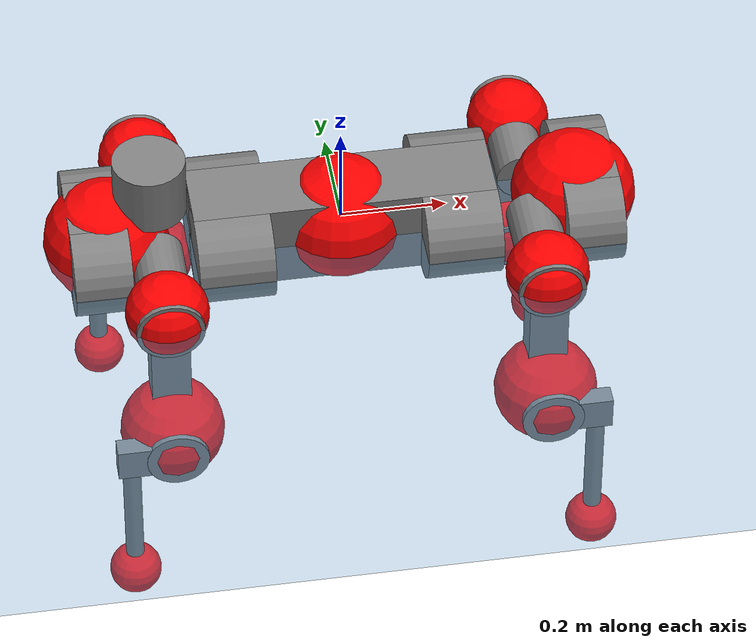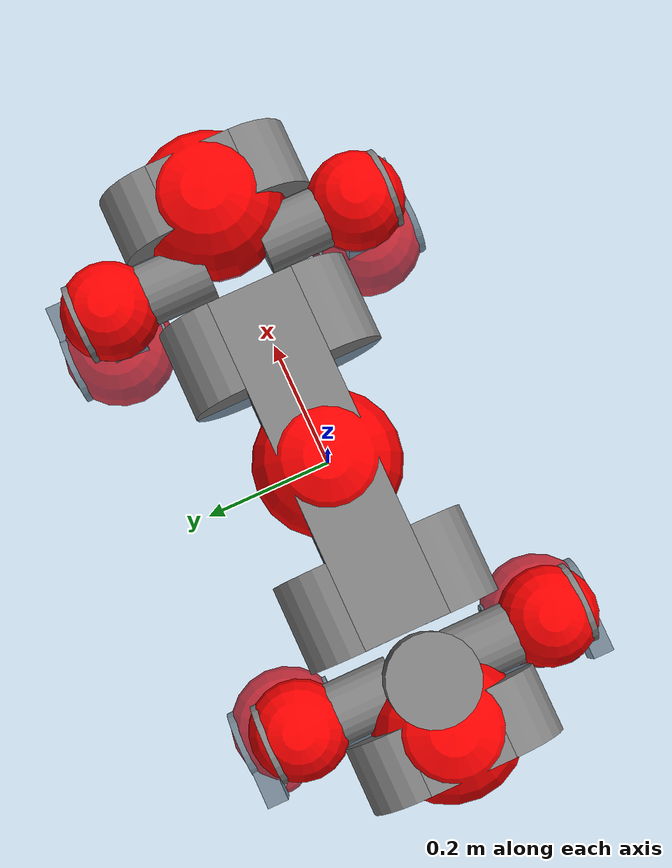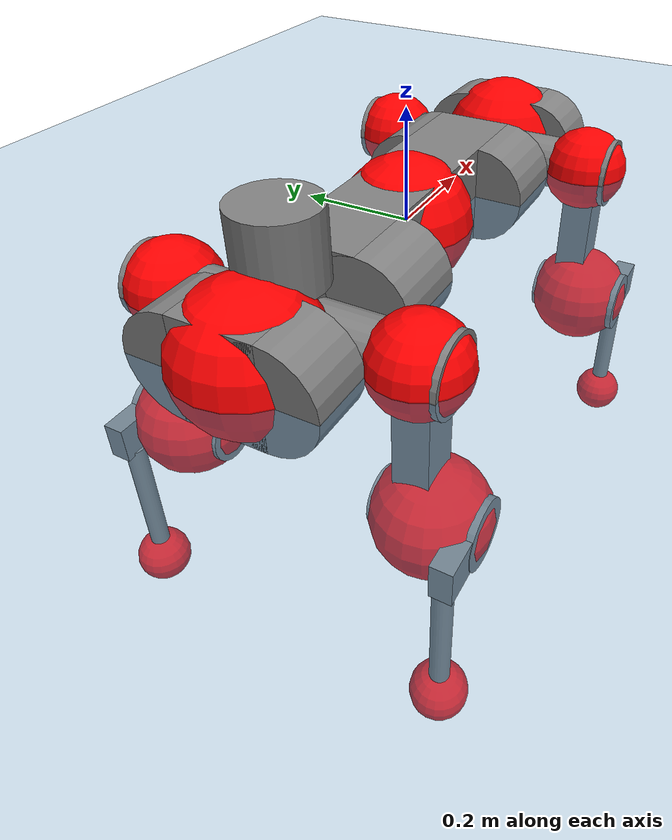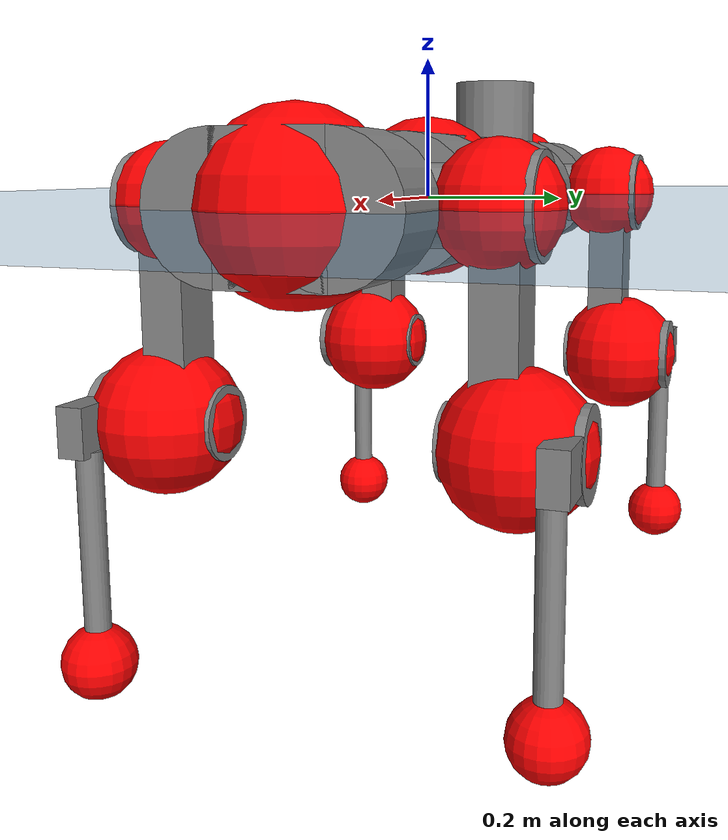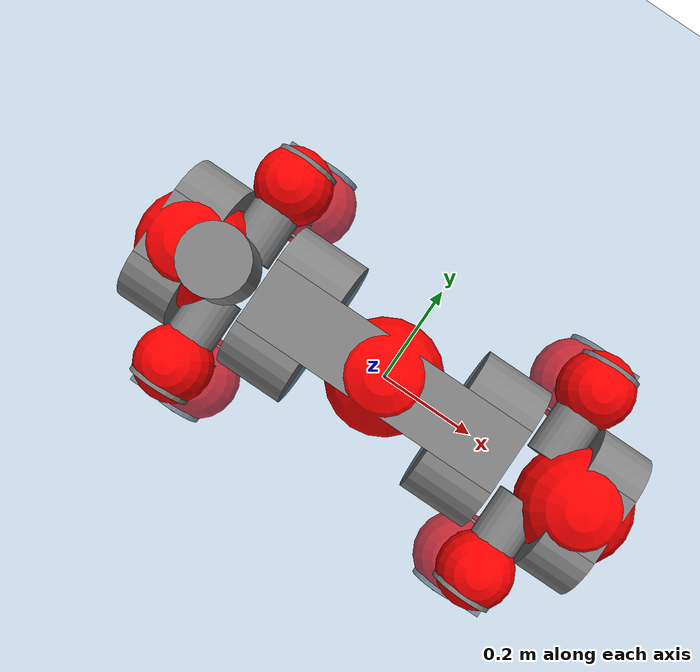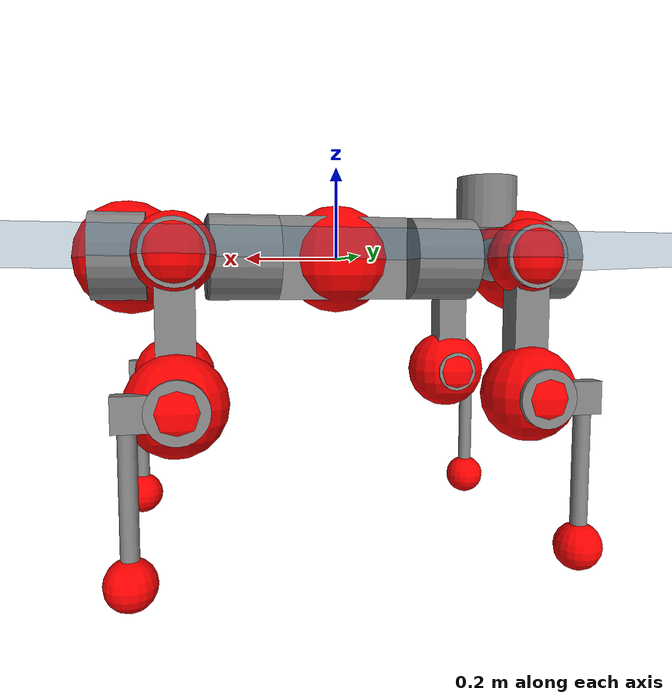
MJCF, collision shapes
<mujoco model="anymal_c">
  <compiler angle="radian" assetdir="assets" balanceinertia="true" inertiafromgeom="false"/>

  <option timestep="0.005" density="1.2" viscosity="2e-05"/>

  <size nkey="1"/>

  <visual>
    <quality shadowsize="8192"/>
    <map shadowclip="0.5"/>
  </visual>

  <default>
    <default class="/">
      <material specular="0" shininess="0.25"/>
      <geom contype="0" conaffinity="0" group="1" solref="-1000 -80"/>
      <site size="0.01 0.005 0.005" group="5"/>
      <general forcelimited="true" forcerange="-80 80" biastype="affine" gainprm="80" biasprm="0 -80 -2"/>
      <default class="anymal_c">
        <joint armature="0.01" damping="0.01" frictionloss="0.1"/>
        <default class="visual">
          <geom type="mesh" group="2"/>
          <default class="visual_zflip"/>
        </default>
        <default class="collision">
          <geom type="cylinder" group="3"/>
          <default class="foot">
            <geom size="0.03 0 0" type="sphere" condim="6" priority="1" friction="0.8 0.02 0.01" solimp="0.015 1 0.03"/>
          </default>
        </default>
      </default>
      <default class="reward_collision_sphere">
        <geom group="5" rgba="1 0 0 1"/>
      </default>
    </default>
  </default>

  <asset>
    <texture type="skybox" colorspace="auto" name="//unnamed_texture_0" builtin="gradient" rgb1="0.95 0.95 0.95" rgb2="0.95 0.95 0.95" width="100" height="600"/>
    <texture type="2d" colorspace="auto" name="texplane" builtin="checker" rgb1="0.345 0.575 0.748" rgb2="0.345 0.575 0.748" markrgb="1 1 1" width="512" height="512"/>
    <texture type="2d" colorspace="linear" name="base" file="base.png"/>
    <texture type="2d" colorspace="linear" name="top_shell" file="top_shell.png"/>
    <texture type="2d" colorspace="linear" name="bottom_shell" file="bottom_shell.png"/>
    <texture type="2d" colorspace="linear" name="remote" file="remote.png"/>
    <texture type="2d" colorspace="linear" name="hatch" file="hatch.png"/>
    <texture type="2d" colorspace="linear" name="handle" file="handle.png"/>
    <texture type="2d" colorspace="linear" name="face" file="face.png"/>
    <texture type="2d" colorspace="linear" name="battery" file="battery.png"/>
    <texture type="2d" colorspace="linear" name="lidar_cage" file="lidar_cage.png"/>
    <texture type="2d" colorspace="linear" name="depth_camera" file="depth_camera.png"/>
    <texture type="2d" colorspace="linear" name="wide_angle_camera" file="wide_angle_camera.png"/>
    <texture type="2d" colorspace="linear" name="lidar" file="lidar.png"/>
    <texture type="2d" colorspace="linear" name="drive" file="drive.png"/>
    <texture type="2d" colorspace="linear" name="hip_l" file="hip_l.png"/>
    <texture type="2d" colorspace="linear" name="shank_l" file="shank_l.png"/>
    <texture type="2d" colorspace="linear" name="foot" file="foot.png"/>
    <texture type="2d" colorspace="linear" name="thigh" file="thigh.png"/>
    <texture type="2d" colorspace="linear" name="shank_r" file="shank_r.png"/>
    <texture type="2d" colorspace="linear" name="hip_r" file="hip_r.png"/>
    <material name="MatPlane" class="/" texture="texplane" texuniform="true" texrepeat="2 2" specular="0.9" shininess="0.5"/>
    <material name="black_plastic" class="/" rgba="0.007 0.007 0.007 1"/>
    <material name="green" class="/" rgba="0.052 0.178 0.033 1"/>
    <material name="red" class="/" rgba="0.178 0.006 0.005 1"/>
    <material name="yellow" class="/" rgba="0.178 0.119 0.006 1"/>
    <material name="lwl" class="/" rgba="0.8 0.8 0.8 1"/>
    <material name="base" class="/" texture="base"/>
    <material name="top_shell" class="/" texture="top_shell"/>
    <material name="bottom_shell" class="/" texture="bottom_shell"/>
    <material name="hip_l" class="/" texture="hip_l"/>
    <material name="thigh" class="/" texture="thigh"/>
    <material name="shank_l" class="/" texture="shank_l"/>
    <material name="foot" class="/" texture="foot"/>
    <material name="hip_r" class="/" texture="hip_r"/>
    <material name="shank" class="/" texture="shank_r"/>
    <material name="hatch" class="/" texture="hatch"/>
    <material name="remote" class="/" texture="remote"/>
    <material name="handle" class="/" texture="handle"/>
    <material name="face" class="/" texture="face"/>
    <material name="depth_camera" class="/" texture="depth_camera"/>
    <material name="wide_angle_camera" class="/" texture="wide_angle_camera"/>
    <material name="battery" class="/" texture="battery"/>
    <material name="lidar_cage" class="/" texture="lidar_cage"/>
    <material name="lidar" class="/" texture="lidar"/>
    <material name="drive" class="/" texture="drive"/>
    <mesh name="base_0" class="/" file="base_0.obj"/>
    <mesh name="base_1" class="/" file="base_1.obj"/>
    <mesh name="base_2" class="/" file="base_2.obj"/>
    <mesh name="base_3" class="/" file="base_3.obj"/>
    <mesh name="base_4" class="/" file="base_4.obj"/>
    <mesh name="base_5" class="/" file="base_5.obj"/>
    <mesh name="top_shell" class="/" file="top_shell.obj"/>
    <mesh name="bottom_shell" class="/" file="bottom_shell.obj"/>
    <mesh name="remote" class="/" file="remote.obj"/>
    <mesh name="handle" class="/" file="handle.obj"/>
    <mesh name="face" class="/" file="face.obj"/>
    <mesh name="wide_angle_camera" class="/" file="wide_angle_camera.obj"/>
    <mesh name="depth_camera" class="/" file="depth_camera.obj"/>
    <mesh name="battery" class="/" file="battery.obj"/>
    <mesh name="lidar_cage" class="/" file="lidar_cage.obj"/>
    <mesh name="lidar" class="/" file="lidar.obj"/>
    <mesh name="drive" class="/" file="drive.obj"/>
    <mesh name="hip_l" class="/" file="hip_l.obj"/>
    <mesh name="thigh" class="/" file="thigh.obj"/>
    <mesh name="shank_l" class="/" file="shank_l.obj"/>
    <mesh name="foot" class="/" file="foot.obj"/>
    <mesh name="hip_r" class="/" file="hip_r.obj"/>
    <mesh name="hatch" class="/" file="hatch.obj"/>
    <mesh name="shank_r" class="/" file="shank_r.obj"/>
  </asset>

  <worldbody>
    <geom name="floor" class="/" size="100 100 0.125" type="plane" group="0" material="MatPlane"/>
    <light name="toplight_shadow" class="/" pos="0 0 5" dir="0.0990148 0.0990148 -0.990148" type="directional" ambient="0.04 0.04 0.04" diffuse="0.55 0.55 0.55" specular="0.12 0.12 0.12"/>
    <light name="toplight_fill" class="/" pos="0 0 5" dir="0.0990148 0.0990148 -0.990148" type="directional" castshadow="false" ambient="0.04 0.04 0.04" diffuse="0.3 0.3 0.3" specular="0.08 0.08 0.08"/>
    <body name="trunk" childclass="anymal_c" pos="4.75923e-05 0.000129486 0.000635206" quat="1 7.84184e-05 -9.32496e-05 5.11256e-05">
      <inertial pos="0.00246911 -0.000537775 0.0479485" quat="0.49996 0.50036 0.499818 0.499862" mass="17.5377" diaginertia="0.579994 0.561057 0.192825"/>
      <joint name="//unnamed_joint_0" type="free" armature="0" damping="0" frictionloss="0"/>
      <geom name="//unnamed_geom_1" class="visual" material="green" mesh="base_0"/>
      <geom name="//unnamed_geom_2" class="visual" material="yellow" mesh="base_1"/>
      <geom name="//unnamed_geom_3" class="visual" material="red" mesh="base_2"/>
      <geom name="//unnamed_geom_4" class="visual" material="black_plastic" mesh="base_3"/>
      <geom name="//unnamed_geom_5" class="visual" material="lwl" mesh="base_4"/>
      <geom name="//unnamed_geom_6" class="visual" material="base" mesh="base_5"/>
      <geom name="trunk_1" class="collision" size="0.28476 0.0687351 0.0883737" type="box"/>
      <geom name="trunk_2" class="collision" size="0.0883737 0.0711899" pos="0.214015 0.0687023 0" quat="0.707107 0 0.707107 0"/>
      <geom name="trunk_3" class="collision" size="0.0883737 0.0711899" pos="-0.214015 0.0687023 0" quat="0.707107 0 0.707107 0"/>
      <geom name="trunk_4" class="collision" size="0.0883737 0.0711899" pos="0.214015 -0.0687023 0" quat="0.707107 0 0.707107 0"/>
      <geom name="trunk_5" class="collision" size="0.0883737 0.0711899" pos="-0.214015 -0.0687023 0" quat="0.707107 0 0.707107 0"/>
      <geom name="//unnamed_geom_12" class="visual" material="top_shell" mesh="top_shell"/>
      <geom name="//unnamed_geom_13" class="visual" material="bottom_shell" mesh="bottom_shell"/>
      <geom name="//unnamed_geom_14" class="visual" material="remote" mesh="remote"/>
      <geom name="//unnamed_geom_15" class="visual" material="handle" mesh="handle"/>
      <geom name="//unnamed_geom_16" class="visual" pos="0.407858 0 0" quat="1 0 0 0" material="face" mesh="face"/>
      <geom name="trunk_6" class="collision" size="0.0540061 0.0687351 0.0883737" pos="0.461977 0 0" type="box"/>
      <geom name="//unnamed_geom_18" class="collision" size="0.0883737 0.0540061" pos="0.461977 0.0687023 0" quat="0.707107 0 0.707107 0"/>
      <geom name="//unnamed_geom_19" class="collision" size="0.0883737 0.0540061" pos="0.461977 -0.0687023 0" quat="0.707107 0 0.707107 0"/>
      <geom name="//unnamed_geom_20" class="visual" pos="0.454252 0 -0.0285987" quat="0.965926 0 0.258819 0" material="depth_camera" mesh="depth_camera"/>
      <geom name="//unnamed_geom_21" class="visual" pos="0.50478 0 0.0146759" material="wide_angle_camera" mesh="wide_angle_camera"/>
      <geom name="//unnamed_geom_22" class="visual_zflip" pos="-0.407858 0 0" quat="0 0 0 1" material="face" mesh="face"/>
      <geom name="trunk_7" class="collision" size="0.0540061 0.0687351 0.0883737" pos="-0.461977 0 0" quat="0 0 0 1" type="box"/>
      <geom name="//unnamed_geom_24" class="collision" size="0.0883737 0.0540061" pos="-0.461977 -0.0687023 0" quat="0 -0.707107 0 0.707107"/>
      <geom name="//unnamed_geom_25" class="collision" size="0.0883737 0.0540061" pos="-0.461977 0.0687023 0" quat="0 -0.707107 0 0.707107"/>
      <geom name="//unnamed_geom_26" class="visual" pos="-0.454252 0 -0.0285987" quat="0 -0.258819 0 0.965926" material="depth_camera" mesh="depth_camera"/>
      <geom name="//unnamed_geom_27" class="visual_zflip" pos="-0.50478 0 0.0146759" quat="0 0 0 1" material="wide_angle_camera" mesh="wide_angle_camera"/>
      <geom name="//unnamed_geom_28" class="visual" material="battery" mesh="battery"/>
      <geom name="//unnamed_geom_29" class="visual" pos="0 0.0750094 0.0285068" quat="0.683013 -0.183013 0.183013 0.683013" material="depth_camera" mesh="depth_camera"/>
      <geom name="//unnamed_geom_30" class="visual" pos="0 -0.0750094 0.0285068" quat="0.683013 0.183013 0.183013 -0.683013" material="depth_camera" mesh="depth_camera"/>
      <geom name="//unnamed_geom_31" class="visual" pos="-0.358167 0 0.0720559" quat="1 0 0 0" material="lidar_cage" mesh="lidar_cage"/>
      <geom name="trunk_8" class="collision" size="0.0687351 0.0589158" pos="-0.358167 0 0.130877"/>
      <geom name="//unnamed_geom_33" class="visual" pos="-0.358167 -9.88075e-07 0.139406" quat="0.707107 0 0 -0.707107" material="lidar" mesh="lidar"/>
      <geom name="//unnamed_geom_34" class="visual" pos="0.295094 0.102072 1.91285e-11" quat="0.258819 0.965926 0 0" material="drive" mesh="drive"/>
      <geom name="//unnamed_geom_35" class="visual" pos="0.295094 -0.102072 -1.91285e-11" quat="0.258819 -0.965926 0 0" material="drive" mesh="drive"/>
      <geom name="//unnamed_geom_36" class="visual" pos="-0.295094 0.102072 -1.91285e-11" quat="0 0 0.965926 -0.258819" material="drive" mesh="drive"/>
      <geom name="//unnamed_geom_37" class="visual" pos="-0.295094 -0.102072 1.91285e-11" quat="0 0 -0.965926 -0.258819" material="drive" mesh="drive"/>
      <geom name="//unnamed_geom_38" class="visual" pos="0.114141 0 0.0715657" quat="1 0 0 0" material="hatch" mesh="hatch"/>
      <geom name="//unnamed_geom_39" class="reward_collision_sphere" size="0.117832"/>
      <geom name="//unnamed_geom_40" class="reward_collision_sphere" size="0.117832" pos="0.442789 0 0"/>
      <geom name="//unnamed_geom_41" class="reward_collision_sphere" size="0.117832" pos="-0.442789 0 0"/>
      <site name="imu" pos="0.238673 0.00595077 0.0472153" size="0.0098193"/>
      <camera name="track" pos="0 -1.96292 0" quat="0.707107 0.707107 0 0" mode="trackcom"/>
      <camera name="ego_camera" pos="0.442789 0 -0.0392141" quat="-0.5 -0.5 0.5 0.5"/>
      <body name="LF_HIP" pos="0.295899 0.101935 0.000201455" quat="0.258491 0.966014 8.15022e-05 0.000442807">
        <inertial pos="0.0562935 -0.0138174 -0.00790566" quat="-0.124323 0.708331 -0.135168 0.681572" mass="2.62324" diaginertia="0.00537352 0.00448883 0.0029816"/>
        <joint name="LF_HAA" pos="0 0 0" axis="1 0.000646287 0.000160498" range="-0.716296 0.471216" armature="0.0102774" damping="0.00344049" frictionloss="0.0957069"/>
        <geom name="//unnamed_geom_42" class="visual" pos="0 1.12525e-06 -1.84821e-07" quat="0.258819 -0.965926 0 0" material="hip_l" mesh="hip_l"/>
        <geom name="//unnamed_geom_43" class="visual" pos="0.0589402 -0.0713851 -0.041206" quat="0.183013 -0.683013 0.683013 0.183013" material="drive" mesh="drive"/>
        <geom name="//unnamed_geom_44" class="collision" size="0.0490965 0.0687351" pos="0.0589402 -0.0117381 -0.00676933" quat="-0.353553 -0.612372 0.612372 -0.353553"/>
        <body name="LF_THIGH" pos="0.0591259 -0.0716637 -0.041829" quat="0.183092 -0.683064 0.682924 0.183075">
          <inertial pos="0.0296235 -1.13933e-05 -0.24025" quat="0.993142 -0.00514086 -0.0807808 0.0843617" mass="2.86607" diaginertia="0.0276023 0.0271564 0.00375314"/>
          <joint name="LF_HFE" pos="0 0 0" axis="0.999991 0.0016555 -0.00396658" range="-3.14368 3.14848" armature="0.0100582" damping="0.0103525" frictionloss="0.0964593"/>
          <geom name="//unnamed_geom_45" class="visual" pos="5.00386e-05 7.8849e-08 0" quat="0.707107 0 0 -0.707107" material="thigh" mesh="thigh"/>
          <geom name="//unnamed_geom_46" class="collision" size="0.0638254 0.0392772" pos="0.039359 0 0" quat="0.5 0.5 -0.5 -0.5"/>
          <geom name="//unnamed_geom_47" class="collision" size="0.0368224 0.0294579 0.13876" pos="0.0295193 0 -0.138538" quat="0.707107 0 0 -0.707107" type="box"/>
          <geom name="//unnamed_geom_48" class="visual" pos="0.0986928 0 -0.2794" quat="1 0 0 0" material="drive" mesh="drive"/>
          <geom name="//unnamed_geom_49" class="collision" size="0.0490965 0.0687351" pos="0.0298145 0 -0.2794" quat="0.707107 0 0.707107 0"/>
          <geom name="//unnamed_geom_50" class="reward_collision_sphere" size="0.0785544" pos="0.0245994 0 0"/>
          <body name="LF_SHANK" pos="0.0983062 -0.000188901 -0.280468" quat="1 -3.78528e-06 -7.54085e-07 1.38385e-06">
            <inertial pos="0.00497359 -0.0601594 -0.0794036" quat="0.992839 -0.116671 -0.000935813 -0.0256418" mass="0.56591" diaginertia="0.00949312 0.00841609 0.0010205"/>
            <joint name="LF_KFE" pos="0 0 0" axis="1 0.000449355 -6.41633e-05" stiffness="2.49318e-05" range="-3.1264 3.12894" armature="0.00931888" damping="0.006042" frictionloss="0.0941091"/>
            <geom name="//unnamed_geom_51" class="visual" pos="1.63165e-05 8.70003e-05 0" quat="0.707107 0 0 -0.707107" material="shank_l" mesh="shank_l"/>
            <geom name="LF_kfe_act" class="collision" size="0.0589158 0.0196386" pos="0.0196795 0 0" quat="0.5 0.5 -0.5 -0.5"/>
            <geom name="//unnamed_geom_53" class="collision" size="0.05646 0.0331401 0.0186567" pos="0.0196795 -0.056433 0" quat="0.5 0.5 -0.5 -0.5" type="box"/>
            <geom name="//unnamed_geom_54" class="visual" pos="0.0128409 -0.0862915 -0.33133" quat="0.382683 0 0 -0.92388" material="foot" mesh="foot"/>
            <geom name="LF_calf" class="collision" size="0.0171838 0.1387" pos="0.0128409 -0.0863195 -0.165665" quat="0.707107 0 0 -0.707107"/>
            <geom name="LF_foot" class="foot" size="0.0320389" pos="0.0128409 -0.0863195 -0.309272" quat="0.707107 0 0 -0.707107"/>
            <geom name="//unnamed_geom_57" class="reward_collision_sphere" size="0.098193" pos="-0.0491988 0 0"/>
            <geom name="//unnamed_geom_58" class="reward_collision_sphere" size="0.0490965" pos="0.0128409 -0.0863195 -0.309272"/>
            <site name="LF_foot" class="foot" pos="0.0128409 -0.0863195 -0.309272" quat="0.707107 0 0 -0.707107" size="0.0098193"/>
          </body>
        </body>
      </body>
      <body name="RF_HIP" pos="0.296439 -0.102677 0.000809865" quat="0.258767 -0.96594 -2.40259e-05 7.35817e-05">
        <inertial pos="0.0562028 0.0151446 -0.00820181" quat="0.134845 0.679078 0.128348 0.710068" mass="2.59787" diaginertia="0.00540086 0.00438077 0.00295182"/>
        <joint name="RF_HAA" pos="0 0 0" axis="1 0.000505297 -0.000772563" stiffness="0.0010739" range="-0.505286 0.730993" armature="0.00970026" damping="0.00931916" frictionloss="0.0960848"/>
        <geom name="//unnamed_geom_59" class="visual" pos="0 -1.12524e-06 -1.8482e-07" quat="0.258819 0.965926 0 0" material="hip_r" mesh="hip_r"/>
        <geom name="//unnamed_geom_60" class="visual" pos="0.0589402 0.0713851 -0.041206" quat="0.183013 0.683013 0.683013 -0.183013" material="drive" mesh="drive"/>
        <geom name="//unnamed_geom_61" class="collision" size="0.0490965 0.0687351" pos="0.0589402 0.0117381 -0.00676933" quat="-0.353553 0.612372 0.612372 0.353553"/>
        <body name="RF_THIGH" pos="0.0599605 0.0721086 -0.0407835" quat="0.183024 0.682955 0.683036 -0.18313">
          <inertial pos="0.0302752 0.00046034 -0.240837" quat="0.992752 -0.00473374 -0.0800169 0.0895448" mass="2.88774" diaginertia="0.0280435 0.0270441 0.00376166"/>
          <joint name="RF_HFE" pos="0 0 0" axis="1 -0.000444585 -0.000328432" stiffness="0.00576673" range="-3.11853 3.1243" armature="0.00983434" damping="0.00847902" frictionloss="0.105863"/>
          <geom name="//unnamed_geom_62" class="visual" pos="5.00386e-05 7.8849e-08 0" quat="0.707107 0 0 -0.707107" material="thigh" mesh="thigh"/>
          <geom name="//unnamed_geom_63" class="collision" size="0.0638254 0.0392772" pos="0.039359 0 0" quat="0.5 0.5 0.5 0.5"/>
          <geom name="//unnamed_geom_64" class="collision" size="0.0368224 0.0294579 0.13876" pos="0.0295193 0 -0.138538" quat="0.707107 0 0 0.707107" type="box"/>
          <geom name="//unnamed_geom_65" class="visual" pos="0.0986928 0 -0.2794" quat="1 0 0 0" material="drive" mesh="drive"/>
          <geom name="//unnamed_geom_66" class="collision" size="0.0490965 0.0687351" pos="0.0298145 0 -0.2794" quat="0.707107 0 0.707107 0"/>
          <geom name="//unnamed_geom_67" class="reward_collision_sphere" size="0.0785544" pos="0.0245994 0 0"/>
          <body name="RF_SHANK" pos="0.0990257 -0.000627259 -0.280049" quat="1 4.19132e-05 2.22548e-05 5.08631e-05">
            <inertial pos="0.00535395 0.0604376 -0.0781116" quat="0.993138 0.1137 -0.00481604 0.0269439" mass="0.553284" diaginertia="0.00923859 0.00842269 0.00100938"/>
            <joint name="RF_KFE" pos="0 0 0" axis="1 0.000828004 0.000239195" range="-3.11686 3.11984" armature="0.00994373" damping="0.0112678" frictionloss="0.0932779"/>
            <geom name="//unnamed_geom_68" class="visual" pos="1.63164e-05 -8.70001e-05 0" quat="0.707107 0 0 0.707107" material="shank" mesh="shank_r"/>
            <geom name="RF_kfe_act" class="collision" size="0.0589158 0.0196386" pos="0.0196795 0 0" quat="0.5 0.5 0.5 0.5"/>
            <geom name="//unnamed_geom_70" class="collision" size="0.05646 0.0331401 0.0186567" pos="0.0196795 0.056433 0" quat="0.5 0.5 0.5 0.5" type="box"/>
            <geom name="//unnamed_geom_71" class="visual" pos="0.0128409 0.0862915 -0.33133" quat="0.382683 0 0 0.92388" material="foot" mesh="foot"/>
            <geom name="RF_calf" class="collision" size="0.0171838 0.1387" pos="0.0128409 0.0863195 -0.165665" quat="0.707107 0 0 0.707107"/>
            <geom name="RF_foot" class="foot" size="0.0279314" pos="0.0128409 0.0863195 -0.309272" quat="0.707107 0 0 0.707107"/>
            <geom name="//unnamed_geom_74" class="reward_collision_sphere" size="0.098193" pos="-0.0491988 0 0"/>
            <geom name="//unnamed_geom_75" class="reward_collision_sphere" size="0.0490965" pos="0.0128409 0.0863195 -0.309272"/>
            <site name="RF_foot" class="foot" pos="0.0128409 0.0863195 -0.309272" quat="0.707107 0 0 0.707107" size="0.0098193"/>
          </body>
        </body>
      </body>
      <body name="LH_HIP" pos="-0.295431 0.10195 -0.000266591" quat="-1.40541e-05 7.95893e-06 0.965894 -0.258937">
        <inertial pos="0.0550437 0.0153617 -0.0084788" quat="0.137575 0.680144 0.130917 0.708053" mass="2.61358" diaginertia="0.0054205 0.00453038 0.00296002"/>
        <joint name="LH_HAA" pos="0 0 0" axis="0.999999 0.000695833 0.000926155" range="-0.503146 0.692132" armature="0.0095491" damping="0.0133506" frictionloss="0.0998075"/>
        <geom name="//unnamed_geom_76" class="visual" pos="0 -1.12524e-06 -1.8482e-07" quat="-0.258819 -0.965926 0 0" material="hip_r" mesh="hip_r"/>
        <geom name="//unnamed_geom_77" class="visual" pos="0.0589402 0.0713851 -0.041206" quat="0.183013 0.683013 0.683013 -0.183013" material="drive" mesh="drive"/>
        <geom name="//unnamed_geom_78" class="collision" size="0.0490965 0.0687351" pos="0.0589402 0.0117381 -0.00676933" quat="-0.353553 0.612372 0.612372 0.353553"/>
        <body name="LH_THIGH" pos="0.05895 0.070338 -0.0409811" quat="0.183079 0.682959 0.683008 -0.183166">
          <inertial pos="0.030423 -0.000212438 -0.241205" quat="0.992765 -0.00523826 -0.0808541 0.088613" mass="2.91253" diaginertia="0.0278892 0.0275497 0.00378689"/>
          <joint name="LH_HFE" pos="0 0 0" axis="0.999996 -0.00183016 -0.00193625" range="-3.14059 3.13484" armature="0.0102725" damping="0.0131864" frictionloss="0.0960437"/>
          <geom name="//unnamed_geom_79" class="visual" pos="5.00386e-05 7.8849e-08 0" quat="0.707107 0 0 -0.707107" material="thigh" mesh="thigh"/>
          <geom name="//unnamed_geom_80" class="collision" size="0.0638254 0.0392772" pos="0.039359 0 0" quat="0.5 0.5 -0.5 -0.5"/>
          <geom name="//unnamed_geom_81" class="collision" size="0.0368224 0.0294579 0.13876" pos="0.0295193 0 -0.138538" quat="0.707107 0 0 -0.707107" type="box"/>
          <geom name="//unnamed_geom_82" class="visual" pos="0.0986928 0 -0.2794" quat="1 0 0 0" material="drive" mesh="drive"/>
          <geom name="//unnamed_geom_83" class="collision" size="0.0490965 0.0687351" pos="0.0298145 0 -0.2794" quat="0.707107 0 0.707107 0"/>
          <geom name="//unnamed_geom_84" class="reward_collision_sphere" size="0.0785544" pos="0.0245994 0 0"/>
          <body name="LH_SHANK" pos="0.100011 -0.000794853 -0.279316" quat="1 0.000205197 -7.3564e-05 -0.000138441">
            <inertial pos="0.00538874 0.0601277 -0.079112" quat="0.992039 0.122559 -0.000817409 0.0289507" mass="0.558171" diaginertia="0.00936828 0.00846511 0.000999376"/>
            <joint name="LH_KFE" pos="0 0 0" axis="1 -6.01002e-05 0.000336081" range="-3.15025 3.14117" armature="0.00997369" damping="0.00951475" frictionloss="0.0944084"/>
            <geom name="//unnamed_geom_85" class="visual" pos="1.63164e-05 -8.70001e-05 0" quat="-0.707107 0 0 -0.707107" material="shank" mesh="shank_r"/>
            <geom name="LH_kfe_act" class="collision" size="0.0589158 0.0196386" pos="0.0196795 0 0" quat="0.5 0.5 -0.5 -0.5"/>
            <geom name="//unnamed_geom_87" class="collision" size="0.05646 0.0331401 0.0186567" pos="0.0196795 0.056433 0" quat="0.5 0.5 -0.5 -0.5" type="box"/>
            <geom name="//unnamed_geom_88" class="visual" pos="0.0128409 0.0862915 -0.33133" quat="-0.382683 0 0 -0.92388" material="foot" mesh="foot"/>
            <geom name="LH_calf" class="collision" size="0.0171838 0.1387" pos="0.0128409 0.0863195 -0.165665" quat="0.707107 0 0 -0.707107"/>
            <geom name="LH_foot" class="foot" size="0.0318842" pos="0.0128409 0.0863195 -0.309272" quat="0.707107 0 0 -0.707107"/>
            <geom name="//unnamed_geom_91" class="reward_collision_sphere" size="0.098193" pos="-0.0491988 0 0"/>
            <geom name="//unnamed_geom_92" class="reward_collision_sphere" size="0.0490965" pos="0.0128409 0.0863195 -0.309272"/>
            <site name="LH_foot" class="foot" pos="0.0128409 0.0863195 -0.309272" quat="0.707107 0 0 -0.707107" size="0.0098193"/>
          </body>
        </body>
      </body>
      <body name="RH_HIP" pos="-0.295179 -0.102864 0.000573941" quat="-3.54707e-05 4.48945e-05 -0.965896 -0.258931">
        <inertial pos="0.0550621 -0.0152146 -0.00812296" quat="-0.128085 0.709626 -0.135142 0.67953" mass="2.66362" diaginertia="0.0054781 0.00453441 0.00297609"/>
        <joint name="RH_HAA" pos="0 0 0" axis="0.999999 -0.000869735 -0.0010023" stiffness="0.00244059" range="-0.726166 0.516054" armature="0.00975288" damping="0.0128073" frictionloss="0.0981498"/>
        <geom name="//unnamed_geom_93" class="visual" pos="0 1.12525e-06 -1.84821e-07" quat="-0.258819 0.965926 0 0" material="hip_l" mesh="hip_l"/>
        <geom name="//unnamed_geom_94" class="visual" pos="0.0589402 -0.0713851 -0.041206" quat="-0.183013 0.683013 -0.683013 -0.183013" material="drive" mesh="drive"/>
        <geom name="//unnamed_geom_95" class="collision" size="0.0490965 0.0687351" pos="0.0589402 -0.0117381 -0.00676933" quat="0.353553 0.612372 -0.612372 0.353553"/>
        <body name="RH_THIGH" pos="0.0587419 -0.0703907 -0.0404115" quat="-0.183025 0.682954 -0.683108 -0.18286">
          <inertial pos="0.0299472 -0.000299566 -0.240153" quat="0.993164 -0.00516512 -0.0806777 0.0841955" mass="2.81697" diaginertia="0.0273483 0.0266381 0.00373981"/>
          <joint name="RH_HFE" pos="0 0 0" axis="0.999999 -0.00098704 -0.000465026" range="-3.1445 3.14445" armature="0.0101569" damping="0.0104868" frictionloss="0.098681"/>
          <geom name="//unnamed_geom_96" class="visual" pos="5.00386e-05 7.8849e-08 0" quat="0.707107 0 0 -0.707107" material="thigh" mesh="thigh"/>
          <geom name="//unnamed_geom_97" class="collision" size="0.0638254 0.0392772" pos="0.039359 0 0" quat="0.5 0.5 0.5 0.5"/>
          <geom name="//unnamed_geom_98" class="collision" size="0.0368224 0.0294579 0.13876" pos="0.0295193 0 -0.138538" quat="0.707107 0 0 0.707107" type="box"/>
          <geom name="//unnamed_geom_99" class="visual" pos="0.0986928 0 -0.2794" quat="1 0 0 0" material="drive" mesh="drive"/>
          <geom name="//unnamed_geom_100" class="collision" size="0.0490965 0.0687351" pos="0.0298145 0 -0.2794" quat="0.707107 0 0.707107 0"/>
          <geom name="//unnamed_geom_101" class="reward_collision_sphere" size="0.0785544" pos="0.0245994 0 0"/>
          <body name="RH_SHANK" pos="0.0977186 -0.000344149 -0.279978" quat="1 0.000357599 -0.000104337 -0.000344337">
            <inertial pos="0.00604834 -0.0599382 -0.0793688" quat="0.992916 -0.116004 -0.00068192 -0.0256821" mass="0.558717" diaginertia="0.0094758 0.00840425 0.00100857"/>
            <joint name="RH_KFE" pos="0 0 0" axis="0.999966 -0.00398856 -0.00715529" range="-3.13687 3.14054" armature="0.00931467" damping="0.00676327" frictionloss="0.0980952"/>
            <geom name="//unnamed_geom_102" class="visual" pos="1.63165e-05 8.70003e-05 0" quat="0.707107 0 0 -0.707107" material="shank_l" mesh="shank_l"/>
            <geom name="RH_kfe_act" class="collision" size="0.0589158 0.0196386" pos="0.0196795 0 0" quat="0.5 0.5 0.5 0.5"/>
            <geom name="//unnamed_geom_104" class="collision" size="0.05646 0.0331401 0.0186567" pos="0.0196795 -0.056433 0" quat="0.5 0.5 0.5 0.5" type="box"/>
            <geom name="//unnamed_geom_105" class="visual" pos="0.0128409 -0.0862915 -0.33133" quat="0.382683 0 0 -0.92388" material="foot" mesh="foot"/>
            <geom name="RH_calf" class="collision" size="0.0171838 0.1387" pos="0.0128409 -0.0863195 -0.165665" quat="0.707107 0 0 0.707107"/>
            <geom name="RH_foot" class="foot" size="0.0271775" pos="0.0128409 -0.0863195 -0.309272" quat="0.707107 0 0 0.707107"/>
            <geom name="//unnamed_geom_108" class="reward_collision_sphere" size="0.098193" pos="-0.0491988 0 0"/>
            <geom name="//unnamed_geom_109" class="reward_collision_sphere" size="0.0490965" pos="0.0128409 -0.0863195 -0.309272"/>
            <site name="RH_foot" class="foot" pos="0.0128409 -0.0863195 -0.309272" quat="0.707107 0 0 0.707107" size="0.0098193"/>
          </body>
        </body>
      </body>
    </body>
  </worldbody>

  <contact>
    <pair class="/" geom1="floor" geom2="LF_foot" name="//unnamed_contact_0"/>
    <pair class="/" geom1="floor" geom2="RF_foot" name="//unnamed_contact_1"/>
    <pair class="/" geom1="floor" geom2="LH_foot" name="//unnamed_contact_2"/>
    <pair class="/" geom1="floor" geom2="RH_foot" name="//unnamed_contact_3"/>
  </contact>

  <actuator>
    <general name="LF_HAA" class="/" joint="LF_HAA" forcerange="-77.7005 77.7005" gainprm="82.8429" biasprm="0 -82.8429 -1.95638"/>
    <general name="LF_HFE" class="/" joint="LF_HFE" forcerange="-81.4642 81.4642" gainprm="82.8429" biasprm="0 -82.8429 -1.95638"/>
    <general name="LF_KFE" class="/" joint="LF_KFE" forcerange="-77.6604 77.6604" gainprm="82.8429" biasprm="0 -82.8429 -1.95638"/>
    <general name="RF_HAA" class="/" joint="RF_HAA" forcerange="-81.6491 81.6491" gainprm="82.8429" biasprm="0 -82.8429 -1.95638"/>
    <general name="RF_HFE" class="/" joint="RF_HFE" forcerange="-76.6495 76.6495" gainprm="82.8429" biasprm="0 -82.8429 -1.95638"/>
    <general name="RF_KFE" class="/" joint="RF_KFE" forcerange="-78.3919 78.3919" gainprm="82.8429" biasprm="0 -82.8429 -1.95638"/>
    <general name="LH_HAA" class="/" joint="LH_HAA" forcerange="-79.0713 79.0713" gainprm="82.8429" biasprm="0 -82.8429 -1.95638"/>
    <general name="LH_HFE" class="/" joint="LH_HFE" forcerange="-78.6892 78.6892" gainprm="82.8429" biasprm="0 -82.8429 -1.95638"/>
    <general name="LH_KFE" class="/" joint="LH_KFE" forcerange="-78.2634 78.2634" gainprm="82.8429" biasprm="0 -82.8429 -1.95638"/>
    <general name="RH_HAA" class="/" joint="RH_HAA" forcerange="-79.1406 79.1406" gainprm="82.8429" biasprm="0 -82.8429 -1.95638"/>
    <general name="RH_HFE" class="/" joint="RH_HFE" forcerange="-76.2047 76.2047" gainprm="82.8429" biasprm="0 -82.8429 -1.95638"/>
    <general name="RH_KFE" class="/" joint="RH_KFE" forcerange="-78.7018 78.7018" gainprm="82.8429" biasprm="0 -82.8429 -1.95638"/>
  </actuator>

  <sensor>
    <gyro site="imu" name="imu_angular_velocity"/>
    <velocimeter site="imu" name="imu_linear_velocity"/>
    <framelinvel objtype="site" objname="LF_foot" name="LF_foot_global_linear_velocity"/>
    <framelinvel objtype="site" objname="RF_foot" name="RF_foot_global_linear_velocity"/>
    <framelinvel objtype="site" objname="LH_foot" name="LH_foot_global_linear_velocity"/>
    <framelinvel objtype="site" objname="RH_foot" name="RH_foot_global_linear_velocity"/>
  </sensor>

  <keyframe>
    <key name="home" qpos="0 0 0.55 1 0 0 0 0 0.4 -0.8 0 -0.4 0.8 0 -0.4 0.8 0 0.4 -0.8"/>
  </keyframe>
</mujoco>
